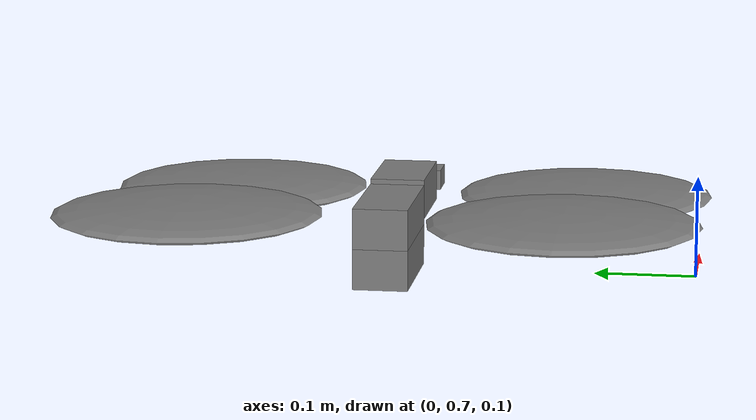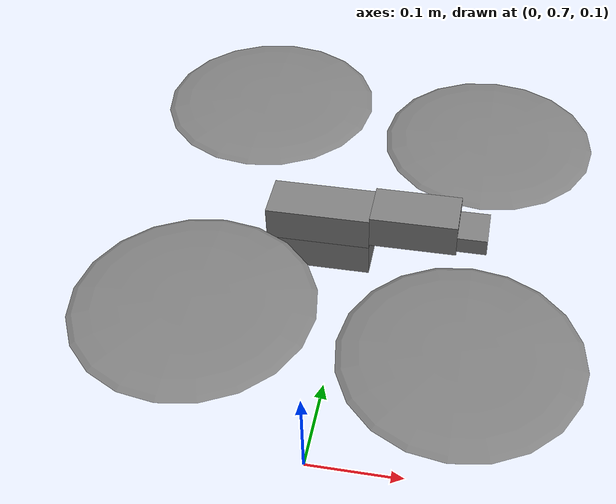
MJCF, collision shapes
<mujoco model="Skydio X2">
  <compiler autolimits="true" assetdir="assets"/>

  <option timestep="0.01" density="1.225" viscosity="1.8e-5"/>

  <default>
    <default class="x2_2">
      <geom mass="0"/>
      <motor ctrlrange="0 13"/>
      <mesh scale="0.01 0.01 0.01"/>
      <default class="x2_2_visual">
        <geom group="2" type="mesh" contype="0" conaffinity="0"/>
      </default>
      <default class="x2_2_collision">
        <geom group="3" type="box"/>
        <default class="x2_2_rotor">
          <geom type="ellipsoid" size=".13 .13 .01"/>
        </default>
      </default>
      <site group="5"/>
    </default>
  </default>

  <asset>
    <texture type="2d" file="X2_lowpoly_texture_SpinningProps_1024_2.png"/>
    <material name="x2_2_phong3SG" texture="X2_lowpoly_texture_SpinningProps_1024_2"/>
    <material name="x2_2_invisible" rgba="0 0 0 0"/>
    <mesh class="x2_2" file="X2_lowpoly_2.obj"/>
  </asset>

  <worldbody>
    <light name="x2_2_spotlight" mode="targetbodycom" target="x2_2" pos="0 -1 2"/>
    <body name="x2_2" pos="0 1 0.1" quat="0 0 0 1" childclass="x2_2">
      <freejoint/>
      <camera name="track_2" pos="-1 0 .5" xyaxes="0 -1 0 1 0 2" mode="trackcom"/>
      <site name="imu_2" pos="0 0 .02"/>
      <geom material="x2_2_phong3SG" mesh="X2_lowpoly_2" class="x2_2_visual" quat="0 0 1 1"/>
      <geom class="x2_2_collision" size=".06 .027 .02" pos=".04 0 .02"/>
      <geom class="x2_2_collision" size=".06 .027 .02" pos=".04 0 .06"/>
      <geom class="x2_2_collision" size=".05 .027 .02" pos="-.07 0 .065"/>
      <geom class="x2_2_collision" size=".023 .017 .01" pos="-.137 .008 .065" quat="1 0 0 1"/>
      <geom name="rotor1_2" class="x2_2_rotor" pos="-.14 -.18 .05" mass=".25"/>
      <geom name="rotor2_2" class="x2_2_rotor" pos="-.14 .18 .05" mass=".25"/>
      <geom name="rotor3_2" class="x2_2_rotor" pos=".14 .18 .08" mass=".25"/>
      <geom name="rotor4_2" class="x2_2_rotor" pos=".14 -.18 .08" mass=".25"/>
      <geom size=".16 .04 .02" pos="0 0 0.02" type="ellipsoid" mass=".325" class="x2_2_visual" material="x2_2_invisible"/>
      <site name="thrust1_2" pos="-.14 -.18 .05"/>
      <site name="thrust2_2" pos="-.14 .18 .05"/>
      <site name="thrust3_2" pos=".14 .18 .08"/>
      <site name="thrust4_2" pos=".14 -.18 .08"/>
    </body>
  </worldbody>

  <actuator>
    <motor class="x2_2" name="thrust1_2" site="thrust1_2" gear="0 0 1 0 0 -.0201"/>
    <motor class="x2_2" name="thrust2_2" site="thrust2_2" gear="0 0 1 0 0  .0201"/>
    <motor class="x2_2" name="thrust3_2" site="thrust3_2" gear="0 0 1 0 0  .0201"/>
    <motor class="x2_2" name="thrust4_2" site="thrust4_2" gear="0 0 1 0 0 -.0201"/>
  </actuator>
</mujoco>
